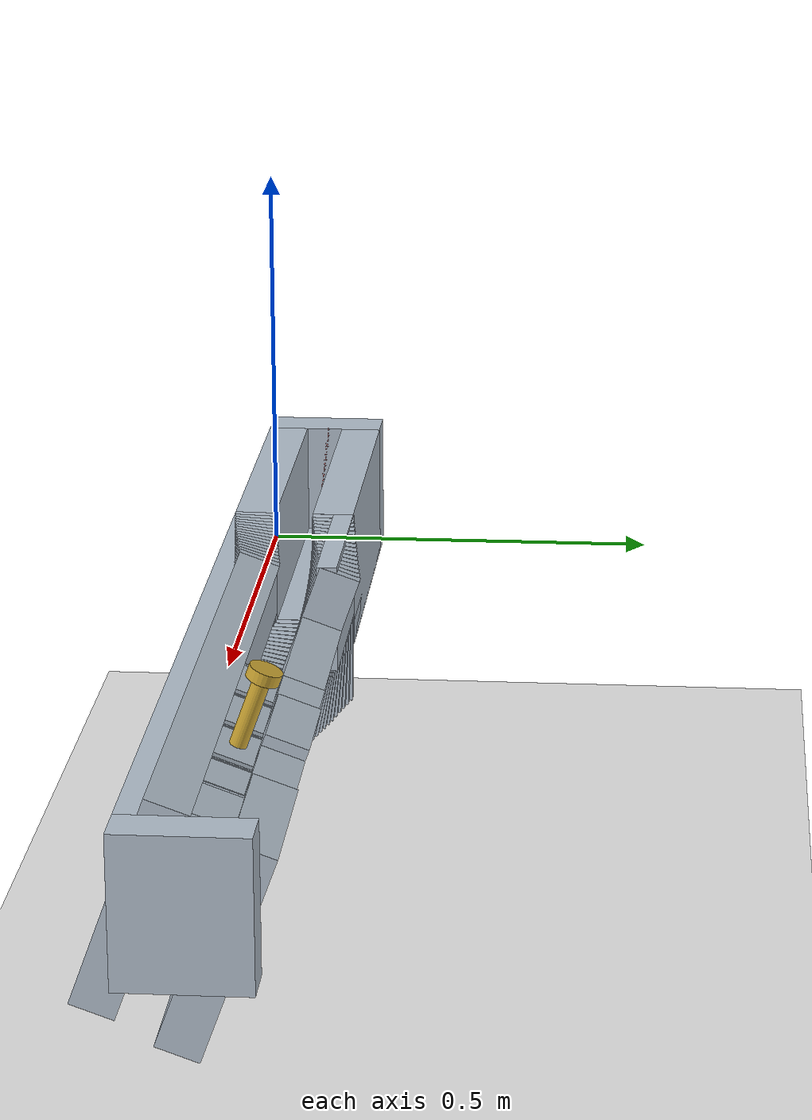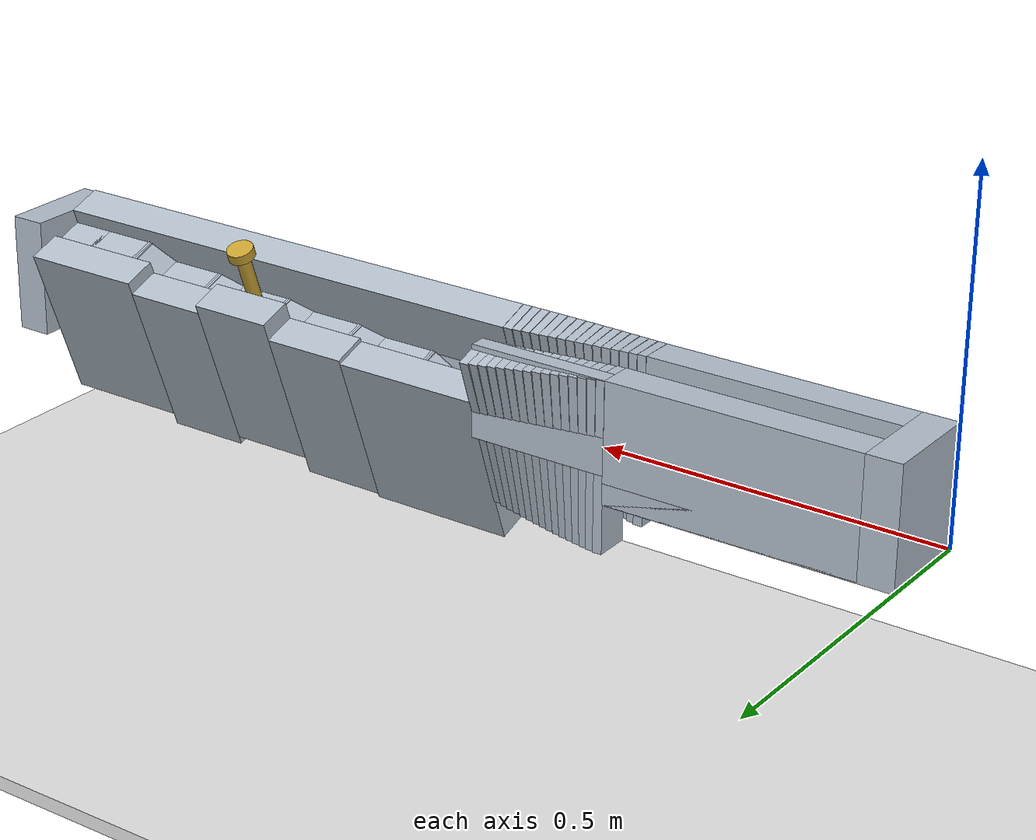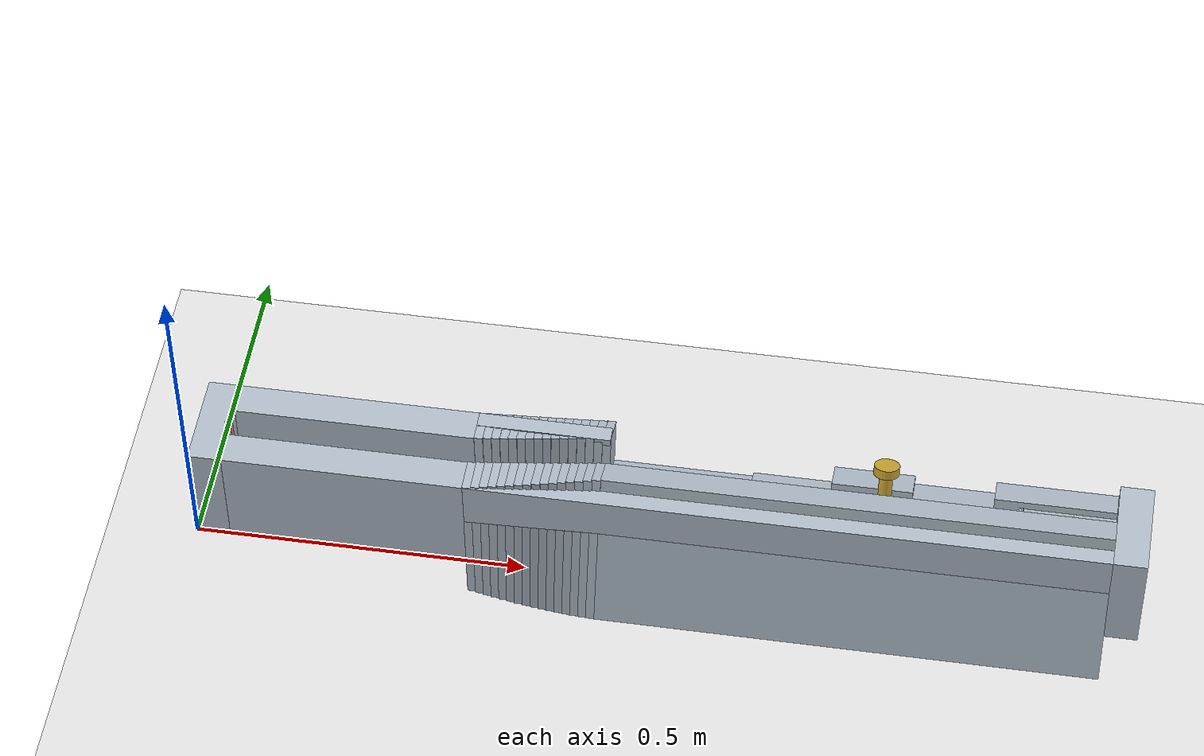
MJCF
<mujoco model="sorter">
<option timestep="0.0004" gravity="0 0 -9.81" integrator="implicitfast" cone="elliptic" impratio="10"><flag multiccd="enable"/></option>
<visual><global offwidth="1280" offheight="720"/></visual>
<worldbody>
<light pos="0.5 -1 2" dir="-0.3 0.5 -1"/>
<camera name="iso" pos="0.9500 0.7500 0.5500" xyaxes="-1.0000 -0.0000 0.0000 0.0000 -0.6097 0.7926"/>
<geom name="floor_rail" type="box" pos="0.230000 0.073000 0.015000" size="0.180000 0.073000 0.015000" rgba="0.7 0.75 0.8 1" friction="0.4 0.005 0.0001"/>
<geom name="wall_rail_m" type="box" pos="0.230000 0.025000 0.085000" size="0.180000 0.025000 0.085000" rgba="0.7 0.75 0.8 1" friction="0.4 0.005 0.0001"/>
<geom name="wall_rail_p" type="box" pos="0.230000 0.121000 0.085000" size="0.180000 0.025000 0.085000" rgba="0.7 0.75 0.8 1" friction="0.4 0.005 0.0001"/>
<geom name="end_wall_0" type="box" pos="0.025000 0.073000 0.085000" size="0.025000 0.073000 0.085000" rgba="0.7 0.75 0.8 1" friction="0.4 0.005 0.0001"/>
<geom name="end_wall_1" type="box" pos="1.385000 0.073000 0.085000" size="0.025000 0.073000 0.085000" rgba="0.7 0.75 0.8 1" friction="0.4 0.005 0.0001"/>
<geom name="tw0_wm" type="box" pos="0.416250 0.024538 0.050280" size="0.006750 0.025000 0.120000" xyaxes="1.000000 0.000000 0.000000 0.000000 0.999941 -0.010908" rgba="0.7 0.75 0.8 1" friction="0.4 0.005 0.0001"/>
<geom name="tw0_wp" type="box" pos="0.416250 0.120538 0.049734" size="0.006750 0.025000 0.120000" xyaxes="1.000000 0.000000 0.000000 0.000000 0.999941 -0.010908" rgba="0.7 0.75 0.8 1" friction="0.4 0.005 0.0001"/>
<geom name="tw0_fl" type="box" pos="0.416250 0.072044 0.004754" size="0.006750 0.043000 0.025000" xyaxes="1.000000 0.000000 0.000000 0.000000 0.999941 -0.010908" rgba="0.7 0.75 0.8 1" friction="0.4 0.005 0.0001"/>
<geom name="tw1_wm" type="box" pos="0.428750 0.023624 0.050882" size="0.006750 0.025000 0.120000" xyaxes="1.000000 0.000000 0.000000 0.000000 0.999465 -0.032719" rgba="0.7 0.75 0.8 1" friction="0.4 0.005 0.0001"/>
<geom name="tw1_wp" type="box" pos="0.428750 0.119622 0.049246" size="0.006750 0.025000 0.120000" xyaxes="1.000000 0.000000 0.000000 0.000000 0.999465 -0.032719" rgba="0.7 0.75 0.8 1" friction="0.4 0.005 0.0001"/>
<geom name="tw1_fl" type="box" pos="0.428750 0.070125 0.004294" size="0.006750 0.043000 0.025000" xyaxes="1.000000 0.000000 0.000000 0.000000 0.999465 -0.032719" rgba="0.7 0.75 0.8 1" friction="0.4 0.005 0.0001"/>
<geom name="tw2_wm" type="box" pos="0.441250 0.022727 0.051541" size="0.006750 0.025000 0.120000" xyaxes="1.000000 0.000000 0.000000 0.000000 0.998513 -0.054515" rgba="0.7 0.75 0.8 1" friction="0.4 0.005 0.0001"/>
<geom name="tw2_wp" type="box" pos="0.441250 0.118721 0.048816" size="0.006750 0.025000 0.120000" xyaxes="1.000000 0.000000 0.000000 0.000000 0.998513 -0.054515" rgba="0.7 0.75 0.8 1" friction="0.4 0.005 0.0001"/>
<geom name="tw2_fl" type="box" pos="0.441250 0.068196 0.003876" size="0.006750 0.043000 0.025000" xyaxes="1.000000 0.000000 0.000000 0.000000 0.998513 -0.054515" rgba="0.7 0.75 0.8 1" friction="0.4 0.005 0.0001"/>
<geom name="tw3_wm" type="box" pos="0.453750 0.021848 0.052257" size="0.006750 0.025000 0.120000" xyaxes="1.000000 0.000000 0.000000 0.000000 0.997086 -0.076284" rgba="0.7 0.75 0.8 1" friction="0.4 0.005 0.0001"/>
<geom name="tw3_wp" type="box" pos="0.453750 0.117837 0.048443" size="0.006750 0.025000 0.120000" xyaxes="1.000000 0.000000 0.000000 0.000000 0.997086 -0.076284" rgba="0.7 0.75 0.8 1" friction="0.4 0.005 0.0001"/>
<geom name="tw3_fl" type="box" pos="0.453750 0.066258 0.003500" size="0.006750 0.043000 0.025000" xyaxes="1.000000 0.000000 0.000000 0.000000 0.997086 -0.076284" rgba="0.7 0.75 0.8 1" friction="0.4 0.005 0.0001"/>
<geom name="tw4_wm" type="box" pos="0.466250 0.020991 0.053028" size="0.006750 0.025000 0.120000" xyaxes="1.000000 0.000000 0.000000 0.000000 0.995185 -0.098017" rgba="0.7 0.75 0.8 1" friction="0.4 0.005 0.0001"/>
<geom name="tw4_wp" type="box" pos="0.466250 0.116973 0.048127" size="0.006750 0.025000 0.120000" xyaxes="1.000000 0.000000 0.000000 0.000000 0.995185 -0.098017" rgba="0.7 0.75 0.8 1" friction="0.4 0.005 0.0001"/>
<geom name="tw4_fl" type="box" pos="0.466250 0.064313 0.003167" size="0.006750 0.043000 0.025000" xyaxes="1.000000 0.000000 0.000000 0.000000 0.995185 -0.098017" rgba="0.7 0.75 0.8 1" friction="0.4 0.005 0.0001"/>
<geom name="tw5_wm" type="box" pos="0.478750 0.020160 0.053855" size="0.006750 0.025000 0.120000" xyaxes="1.000000 0.000000 0.000000 0.000000 0.992810 -0.119704" rgba="0.7 0.75 0.8 1" friction="0.4 0.005 0.0001"/>
<geom name="tw5_wp" type="box" pos="0.478750 0.116133 0.047870" size="0.006750 0.025000 0.120000" xyaxes="1.000000 0.000000 0.000000 0.000000 0.992810 -0.119704" rgba="0.7 0.75 0.8 1" friction="0.4 0.005 0.0001"/>
<geom name="tw5_fl" type="box" pos="0.478750 0.062361 0.002876" size="0.006750 0.043000 0.025000" xyaxes="1.000000 0.000000 0.000000 0.000000 0.992810 -0.119704" rgba="0.7 0.75 0.8 1" friction="0.4 0.005 0.0001"/>
<geom name="tw6_wm" type="box" pos="0.491250 0.019355 0.054738" size="0.006750 0.025000 0.120000" xyaxes="1.000000 0.000000 0.000000 0.000000 0.989962 -0.141333" rgba="0.7 0.75 0.8 1" friction="0.4 0.005 0.0001"/>
<geom name="tw6_wp" type="box" pos="0.491250 0.115320 0.047671" size="0.006750 0.025000 0.120000" xyaxes="1.000000 0.000000 0.000000 0.000000 0.989962 -0.141333" rgba="0.7 0.75 0.8 1" friction="0.4 0.005 0.0001"/>
<geom name="tw6_fl" type="box" pos="0.491250 0.060402 0.002628" size="0.006750 0.043000 0.025000" xyaxes="1.000000 0.000000 0.000000 0.000000 0.989962 -0.141333" rgba="0.7 0.75 0.8 1" friction="0.4 0.005 0.0001"/>
<geom name="tw7_wm" type="box" pos="0.503750 0.018582 0.055675" size="0.006750 0.025000 0.120000" xyaxes="1.000000 0.000000 0.000000 0.000000 0.986643 -0.162895" rgba="0.7 0.75 0.8 1" friction="0.4 0.005 0.0001"/>
<geom name="tw7_wp" type="box" pos="0.503750 0.114537 0.047530" size="0.006750 0.025000 0.120000" xyaxes="1.000000 0.000000 0.000000 0.000000 0.986643 -0.162895" rgba="0.7 0.75 0.8 1" friction="0.4 0.005 0.0001"/>
<geom name="tw7_fl" type="box" pos="0.503750 0.058439 0.002422" size="0.006750 0.043000 0.025000" xyaxes="1.000000 0.000000 0.000000 0.000000 0.986643 -0.162895" rgba="0.7 0.75 0.8 1" friction="0.4 0.005 0.0001"/>
<geom name="tw8_wm" type="box" pos="0.516250 0.017842 0.056667" size="0.006750 0.025000 0.120000" xyaxes="1.000000 0.000000 0.000000 0.000000 0.982855 -0.184380" rgba="0.7 0.75 0.8 1" friction="0.4 0.005 0.0001"/>
<geom name="tw8_wp" type="box" pos="0.516250 0.113787 0.047448" size="0.006750 0.025000 0.120000" xyaxes="1.000000 0.000000 0.000000 0.000000 0.982855 -0.184380" rgba="0.7 0.75 0.8 1" friction="0.4 0.005 0.0001"/>
<geom name="tw8_fl" type="box" pos="0.516250 0.056472 0.002259" size="0.006750 0.043000 0.025000" xyaxes="1.000000 0.000000 0.000000 0.000000 0.982855 -0.184380" rgba="0.7 0.75 0.8 1" friction="0.4 0.005 0.0001"/>
<geom name="tw9_wm" type="box" pos="0.528750 0.017138 0.057713" size="0.006750 0.025000 0.120000" xyaxes="1.000000 0.000000 0.000000 0.000000 0.978599 -0.205777" rgba="0.7 0.75 0.8 1" friction="0.4 0.005 0.0001"/>
<geom name="tw9_wp" type="box" pos="0.528750 0.113074 0.047424" size="0.006750 0.025000 0.120000" xyaxes="1.000000 0.000000 0.000000 0.000000 0.978599 -0.205777" rgba="0.7 0.75 0.8 1" friction="0.4 0.005 0.0001"/>
<geom name="tw9_fl" type="box" pos="0.528750 0.054502 0.002140" size="0.006750 0.043000 0.025000" xyaxes="1.000000 0.000000 0.000000 0.000000 0.978599 -0.205777" rgba="0.7 0.75 0.8 1" friction="0.4 0.005 0.0001"/>
<geom name="tw10_wm" type="box" pos="0.541250 0.016474 0.058812" size="0.006750 0.025000 0.120000" xyaxes="1.000000 0.000000 0.000000 0.000000 0.973877 -0.227076" rgba="0.7 0.75 0.8 1" friction="0.4 0.005 0.0001"/>
<geom name="tw10_wp" type="box" pos="0.541250 0.112402 0.047458" size="0.006750 0.025000 0.120000" xyaxes="1.000000 0.000000 0.000000 0.000000 0.973877 -0.227076" rgba="0.7 0.75 0.8 1" friction="0.4 0.005 0.0001"/>
<geom name="tw10_fl" type="box" pos="0.541250 0.052530 0.002063" size="0.006750 0.043000 0.025000" xyaxes="1.000000 0.000000 0.000000 0.000000 0.973877 -0.227076" rgba="0.7 0.75 0.8 1" friction="0.4 0.005 0.0001"/>
<geom name="tw11_wm" type="box" pos="0.553750 0.015853 0.059964" size="0.006750 0.025000 0.120000" xyaxes="1.000000 0.000000 0.000000 0.000000 0.968692 -0.248267" rgba="0.7 0.75 0.8 1" friction="0.4 0.005 0.0001"/>
<geom name="tw11_wp" type="box" pos="0.553750 0.111775 0.047550" size="0.006750 0.025000 0.120000" xyaxes="1.000000 0.000000 0.000000 0.000000 0.968692 -0.248267" rgba="0.7 0.75 0.8 1" friction="0.4 0.005 0.0001"/>
<geom name="tw11_fl" type="box" pos="0.553750 0.050557 0.002029" size="0.006750 0.043000 0.025000" xyaxes="1.000000 0.000000 0.000000 0.000000 0.968692 -0.248267" rgba="0.7 0.75 0.8 1" friction="0.4 0.005 0.0001"/>
<geom name="tw12_wm" type="box" pos="0.566250 0.015278 0.061168" size="0.006750 0.025000 0.120000" xyaxes="1.000000 0.000000 0.000000 0.000000 0.963045 -0.269340" rgba="0.7 0.75 0.8 1" friction="0.4 0.005 0.0001"/>
<geom name="tw12_wp" type="box" pos="0.566250 0.111195 0.047701" size="0.006750 0.025000 0.120000" xyaxes="1.000000 0.000000 0.000000 0.000000 0.963045 -0.269340" rgba="0.7 0.75 0.8 1" friction="0.4 0.005 0.0001"/>
<geom name="tw12_fl" type="box" pos="0.566250 0.048583 0.002039" size="0.006750 0.043000 0.025000" xyaxes="1.000000 0.000000 0.000000 0.000000 0.963045 -0.269340" rgba="0.7 0.75 0.8 1" friction="0.4 0.005 0.0001"/>
<geom name="tw13_wm" type="box" pos="0.578750 0.014752 0.062424" size="0.006750 0.025000 0.120000" xyaxes="1.000000 0.000000 0.000000 0.000000 0.956940 -0.290285" rgba="0.7 0.75 0.8 1" friction="0.4 0.005 0.0001"/>
<geom name="tw13_wp" type="box" pos="0.578750 0.110669 0.047910" size="0.006750 0.025000 0.120000" xyaxes="1.000000 0.000000 0.000000 0.000000 0.956940 -0.290285" rgba="0.7 0.75 0.8 1" friction="0.4 0.005 0.0001"/>
<geom name="tw13_fl" type="box" pos="0.578750 0.046610 0.002091" size="0.006750 0.043000 0.025000" xyaxes="1.000000 0.000000 0.000000 0.000000 0.956940 -0.290285" rgba="0.7 0.75 0.8 1" friction="0.4 0.005 0.0001"/>
<geom name="tw14_wm" type="box" pos="0.591250 0.014278 0.063732" size="0.006750 0.025000 0.120000" xyaxes="1.000000 0.000000 0.000000 0.000000 0.950380 -0.311091" rgba="0.7 0.75 0.8 1" friction="0.4 0.005 0.0001"/>
<geom name="tw14_wp" type="box" pos="0.591250 0.110199 0.048177" size="0.006750 0.025000 0.120000" xyaxes="1.000000 0.000000 0.000000 0.000000 0.950380 -0.311091" rgba="0.7 0.75 0.8 1" friction="0.4 0.005 0.0001"/>
<geom name="tw14_fl" type="box" pos="0.591250 0.044638 0.002187" size="0.006750 0.043000 0.025000" xyaxes="1.000000 0.000000 0.000000 0.000000 0.950380 -0.311091" rgba="0.7 0.75 0.8 1" friction="0.4 0.005 0.0001"/>
<geom name="tw15_wm" type="box" pos="0.603750 0.013860 0.065090" size="0.006750 0.025000 0.120000" xyaxes="1.000000 0.000000 0.000000 0.000000 0.943368 -0.331750" rgba="0.7 0.75 0.8 1" friction="0.4 0.005 0.0001"/>
<geom name="tw15_wp" type="box" pos="0.603750 0.109790 0.048502" size="0.006750 0.025000 0.120000" xyaxes="1.000000 0.000000 0.000000 0.000000 0.943368 -0.331750" rgba="0.7 0.75 0.8 1" friction="0.4 0.005 0.0001"/>
<geom name="tw15_fl" type="box" pos="0.603750 0.042669 0.002325" size="0.006750 0.043000 0.025000" xyaxes="1.000000 0.000000 0.000000 0.000000 0.943368 -0.331750" rgba="0.7 0.75 0.8 1" friction="0.4 0.005 0.0001"/>
<geom name="tilt_wm" type="box" pos="0.985000 0.013673 0.065787" size="0.375000 0.025000 0.120000" xyaxes="1.000000 0.000000 0.000000 0.000000 0.939693 -0.342020" rgba="0.7 0.75 0.8 1" friction="0.4 0.005 0.0001"/>
<geom name="wp0" type="box" pos="0.715000 0.086962 -0.013537" size="0.105000 0.025000 0.120000" xyaxes="1.000000 0.000000 0.000000 0.000000 0.939693 -0.342020" rgba="0.7 0.75 0.8 1" friction="0.4 0.005 0.0001"/>
<geom name="wp1" type="box" pos="0.880000 0.088946 -0.008086" size="0.060000 0.025000 0.120000" xyaxes="1.000000 0.000000 0.000000 0.000000 0.939693 -0.342020" rgba="0.7 0.75 0.8 1" friction="0.4 0.005 0.0001"/>
<geom name="wp2" type="box" pos="1.000000 0.097873 0.016440" size="0.060000 0.025000 0.120000" xyaxes="1.000000 0.000000 0.000000 0.000000 0.939693 -0.342020" rgba="0.7 0.75 0.8 1" friction="0.4 0.005 0.0001"/>
<geom name="wp3" type="box" pos="1.120000 0.093290 0.003848" size="0.060000 0.025000 0.120000" xyaxes="1.000000 0.000000 0.000000 0.000000 0.939693 -0.342020" rgba="0.7 0.75 0.8 1" friction="0.4 0.005 0.0001"/>
<geom name="wp4" type="box" pos="1.270000 0.099617 0.021232" size="0.090000 0.025000 0.120000" xyaxes="1.000000 0.000000 0.000000 0.000000 0.939693 -0.342020" rgba="0.7 0.75 0.8 1" friction="0.4 0.005 0.0001"/>
<geom name="fl_61" type="box" pos="0.686249 0.053802 0.035698" size="0.075784 0.038000 0.025000" xyaxes="0.893049 0.153895 0.422823 0.000000 0.939693 -0.342020" rgba="0.7 0.75 0.8 1" friction="0.4 0.005 0.0001"/>
<geom name="fl_74" type="box" pos="0.780000 0.064088 0.063960" size="0.043000 0.038000 0.025000" xyaxes="1.000000 0.000000 0.000000 0.000000 0.939693 -0.342020" rgba="0.7 0.75 0.8 1" friction="0.4 0.005 0.0001"/>
<geom name="fl_82" type="box" pos="0.846517 0.066231 0.069847" size="0.023716 0.038000 0.025000" xyaxes="0.965429 0.089153 0.244946 0.000000 0.939693 -0.342020" rgba="0.7 0.75 0.8 1" friction="0.4 0.005 0.0001"/>
<geom name="fl_86" type="box" pos="0.900000 0.067782 0.074109" size="0.043000 0.038000 0.025000" xyaxes="1.000000 0.000000 0.000000 0.000000 0.939693 -0.342020" rgba="0.7 0.75 0.8 1" friction="0.4 0.005 0.0001"/>
<geom name="fl_94" type="box" pos="0.966685 0.069992 0.080180" size="0.023756 0.038000 0.025000" xyaxes="0.963587 0.091455 0.251269 0.000000 0.939693 -0.342020" rgba="0.7 0.75 0.8 1" friction="0.4 0.005 0.0001"/>
<geom name="fl_98" type="box" pos="1.020000 0.071579 0.084540" size="0.043000 0.038000 0.025000" xyaxes="1.000000 0.000000 0.000000 0.000000 0.939693 -0.342020" rgba="0.7 0.75 0.8 1" friction="0.4 0.005 0.0001"/>
<geom name="fl_106" type="box" pos="1.086963 0.073901 0.090919" size="0.023824 0.038000 0.025000" xyaxes="0.960429 0.095261 0.261727 0.000000 0.939693 -0.342020" rgba="0.7 0.75 0.8 1" friction="0.4 0.005 0.0001"/>
<geom name="fl_110" type="box" pos="1.140000 0.075546 0.095440" size="0.043000 0.038000 0.025000" xyaxes="1.000000 0.000000 0.000000 0.000000 0.939693 -0.342020" rgba="0.7 0.75 0.8 1" friction="0.4 0.005 0.0001"/>
<geom name="fl_118" type="box" pos="1.212664 0.080743 0.109718" size="0.026196 0.038000 0.025000" xyaxes="0.862211 0.173250 0.476000 0.000000 0.939693 -0.342020" rgba="0.7 0.75 0.8 1" friction="0.4 0.005 0.0001"/>
<geom name="fl_122" type="box" pos="1.260000 0.083584 0.117523" size="0.043000 0.038000 0.025000" xyaxes="1.000000 0.000000 0.000000 0.000000 0.939693 -0.342020" rgba="0.7 0.75 0.8 1" friction="0.4 0.005 0.0001"/>
<geom name="fl_130" type="box" pos="1.330000 0.083584 0.117523" size="0.033000 0.038000 0.025000" xyaxes="1.000000 0.000000 0.000000 0.000000 0.939693 -0.342020" rgba="0.7 0.75 0.8 1" friction="0.4 0.005 0.0001"/>
<geom name="deck_m" type="box" pos="0.885000 0.025000 0.105000" size="0.475000 0.025000 0.065000" rgba="0.7 0.75 0.8 1" friction="0.4 0.005 0.0001"/>
<geom name="deck_p" type="box" pos="0.510000 0.133866 0.105000" size="0.100000 0.012134 0.065000" rgba="0.7 0.75 0.8 1" friction="0.4 0.005 0.0001"/>
<geom name="ground" type="box" pos="0.705000 0.073000 -0.300000" size="2.000000 2.000000 0.010000" rgba="0.9 0.9 0.9 1" friction="0.4 0.005 0.0001"/>
<body name="pusher" mocap="true" pos="0.04000 0.07300 0.12250">
  <geom name="tooth" type="box" size="0.01000 0.00600 0.04750" rgba="0.9 0.5 0.5 1" friction="0.4 0.005 0.0001"/>
</body>
<body name="s0" pos="1.02000 0.08047 0.10897" quat="0.984808 -0.173648 0 0">
  <freejoint/>
  <geom name="s0_sh" type="cylinder" size="0.01000 0.04000" pos="0 0 0.04000" density="7850" rgba="0.8 0.65 0.2 1" friction="0.4 0.005 0.0001"/>
  <geom name="s0_hd" type="cylinder" size="0.01900 0.00700" pos="0 0 0.08700" density="7850" rgba="0.8 0.65 0.2 1" friction="0.4 0.005 0.0001"/>
</body>
</worldbody>
</mujoco>
